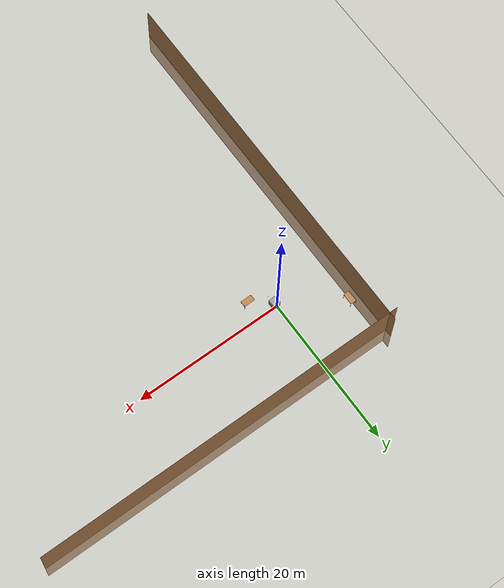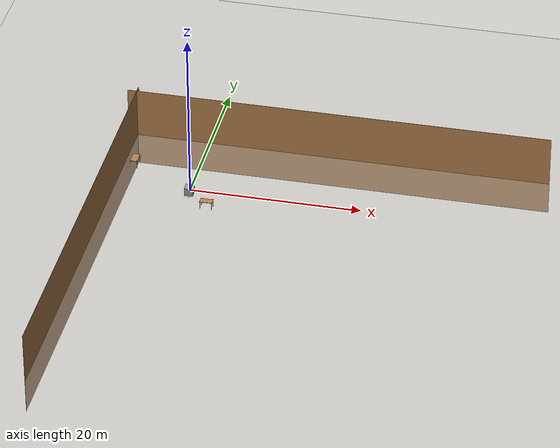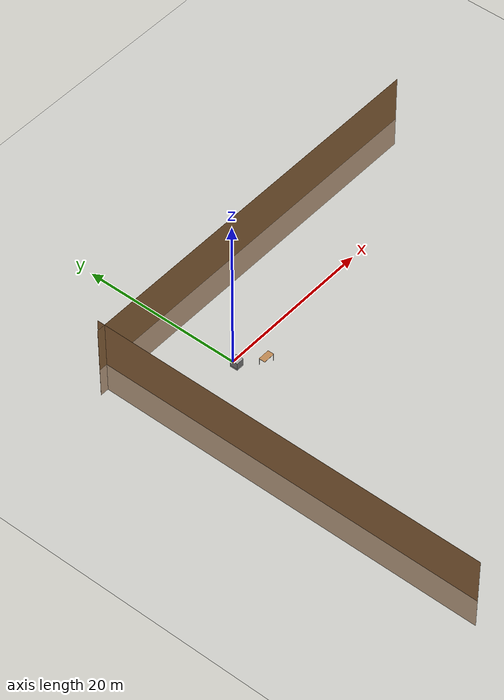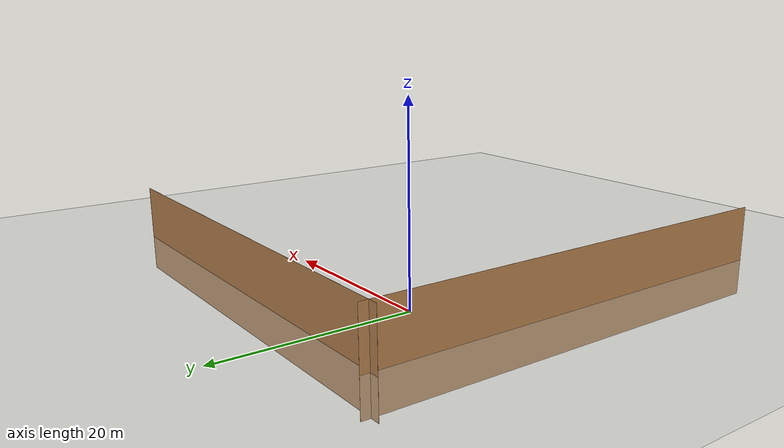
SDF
<sdf version="1.4">
 <world name="default">
  <include><uri>model://minitable</uri><pose>2.5 -2.48 0 0 0 0</pose></include>
  <include>
   <uri>model://unit_box</uri>
   <pose>0 -0.485773 0.255625 3.1415 0 -1.551854</pose>
   <static>0</static>
  </include>
  <model name="box_mini">
   <pose>0.15 -1.6 0.05 0 0 0</pose>
   <link name="link">
    <inertial><mass>0.01</mass></inertial>
    <collision name="collision"><geometry><sphere><radius>0.001</radius></sphere></geometry></collision>
    <visual name="visual"><geometry><sphere><radius>0.02</radius></sphere></geometry></visual>
   </link>
  </model>
  <include>
   <uri>model://wall_wooden</uri>
   <name>wall_wooden1</name>
   <pose>15.15 10 0 0 0 0</pose>
   <static>1</static>
  </include>
  <include>
   <uri>model://wall_wooden</uri>
   <name>wall_wooden2</name>
   <pose>-8.768 -14 0 0 0 1.57</pose>
   <static>1</static>
  </include>
  <include>
   <uri>model://minitable</uri>
   <name>minitable_2</name>
   <pose>-7.65 4.39 0 0 0 -1.57</pose>
   <static>1</static>
  </include>
  <include><uri>model://sun</uri></include>
  <include><uri>model://ground_plane</uri></include>
  <scene>
   <ambient>0.4 0.4 0.4 1.0</ambient>
   <grid>false</grid>
   <sky><clouds><speed>4</speed></clouds></sky>
   <shadows>false</shadows>
  </scene>
  <light type="directional" name="sun">
   <cast_shadows>false</cast_shadows>
   <pose>0 0 100 0 0 0</pose>
   <diffuse>0.8 0.8 0.8 1</diffuse>
   <specular>0.9 0.9 0.9 1</specular>
   <attenuation>
    <range>1000</range>
    <constant>0.9</constant>
    <linear>0.01</linear>
    <quadratic>0.001</quadratic>
   </attenuation>
   <direction>0.2 0.2 -0.9</direction>
  </light>
 </world>
</sdf>

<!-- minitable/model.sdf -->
<sdf version='1.6'>
  <model name='minitable'>
    <link name='link'>
      <pose frame=''>0 0 0 0 -0 0</pose>
      <self_collide>0</self_collide>
      <kinematic>0</kinematic>
      <gravity>1</gravity>
      <inertial>
        <mass>1</mass>
        <pose frame=''>0 0 0 0 -0 0</pose>
        <inertia>
          <ixx>1</ixx>
          <ixy>0</ixy>
          <ixz>0</ixz>
          <iyy>1</iyy>
          <iyz>0</iyz>
          <izz>1</izz>
        </inertia>
      </inertial>
      <visual name='visual1'>
        <pose frame=''>0 0 0.5 0 -0 0</pose>
        <geometry>
          <box>
            <size>1.5 0.8 0.03</size>
          </box>
        </geometry>
        <material>
          <script>
            <uri>file://media/materials/scripts/gazebo.material</uri>
            <name>Gazebo/Wood</name>
          </script>
          <shader type='pixel'>
            <normal_map>__default__</normal_map>
          </shader>
          <ambient>1 1 1 1</ambient>
          <diffuse>1 1 1 1</diffuse>
          <specular>0.2 0.2 0.2 1</specular>
          <emissive>0 0 0 1</emissive>
        </material>
        <transparency>0</transparency>
        <cast_shadows>1</cast_shadows>
      </visual>
      <visual name='front_left_leg'>
        <pose frame=''>0.68 0.38 0.05 0 -0 0</pose>
        <geometry>
          <cylinder>
            <radius>0.02</radius>
            <length>1</length>
          </cylinder>
        </geometry>
        <material>
          <script>
            <uri>file://media/materials/scripts/gazebo.material</uri>
            <name>Gazebo/Grey</name>
          </script>
          <shader type='pixel'>
            <normal_map>__default__</normal_map>
          </shader>
          <ambient>0.3 0.3 0.3 1</ambient>
          <diffuse>0.7 0.7 0.7 1</diffuse>
          <specular>0.01 0.01 0.01 1</specular>
          <emissive>0 0 0 1</emissive>
        </material>
        <transparency>0</transparency>
        <cast_shadows>1</cast_shadows>
      </visual>
      <visual name='front_right_leg'>
        <pose frame=''>0.68 -0.38 0.05 0 -0 0</pose>
        <geometry>
          <cylinder>
            <radius>0.02</radius>
            <length>1</length>
          </cylinder>
        </geometry>
        <material>
          <script>
            <uri>file://media/materials/scripts/gazebo.material</uri>
            <name>Gazebo/Grey</name>
          </script>
          <shader type='pixel'>
            <normal_map>__default__</normal_map>
          </shader>
          <ambient>0.3 0.3 0.3 1</ambient>
          <diffuse>0.7 0.7 0.7 1</diffuse>
          <specular>0.01 0.01 0.01 1</specular>
          <emissive>0 0 0 1</emissive>
        </material>
        <transparency>0</transparency>
        <cast_shadows>1</cast_shadows>
      </visual>
      <visual name='back_right_leg'>
        <pose frame=''>-0.68 -0.38 0.05 0 -0 0</pose>
        <geometry>
          <cylinder>
            <radius>0.02</radius>
            <length>1</length>
          </cylinder>
        </geometry>
        <material>
          <script>
            <uri>file://media/materials/scripts/gazebo.material</uri>
            <name>Gazebo/Grey</name>
          </script>
          <shader type='pixel'>
            <normal_map>__default__</normal_map>
          </shader>
          <ambient>0.3 0.3 0.3 1</ambient>
          <diffuse>0.7 0.7 0.7 1</diffuse>
          <specular>0.01 0.01 0.01 1</specular>
          <emissive>0 0 0 1</emissive>
        </material>
        <transparency>0</transparency>
        <cast_shadows>1</cast_shadows>
      </visual>
      <visual name='back_left_leg'>
        <pose frame=''>-0.68 0.38 0.05 0 -0 0</pose>
        <geometry>
          <cylinder>
            <radius>0.02</radius>
            <length>1</length>
          </cylinder>
        </geometry>
        <material>
          <script>
            <uri>file://media/materials/scripts/gazebo.material</uri>
            <name>Gazebo/Grey</name>
          </script>
          <shader type='pixel'>
            <normal_map>__default__</normal_map>
          </shader>
          <ambient>0.3 0.3 0.3 1</ambient>
          <diffuse>0.7 0.7 0.7 1</diffuse>
          <specular>0.01 0.01 0.01 1</specular>
          <emissive>0 0 0 1</emissive>
        </material>
        <transparency>0</transparency>
        <cast_shadows>1</cast_shadows>
      </visual>
      <collision name='surface'>
        <laser_retro>0</laser_retro>
        <max_contacts>10</max_contacts>
        <pose frame=''>0 0 0.5 0 -0 0</pose>
        <geometry>
          <box>
            <size>1.5 0.8 0.03</size>
          </box>
        </geometry>
        <surface>
          <friction>
            <ode>
              <mu>0.6</mu>
              <mu2>0.6</mu2>
              <fdir1>0 0 0</fdir1>
              <slip1>0</slip1>
              <slip2>0</slip2>
            </ode>
            <torsional>
              <coefficient>1</coefficient>
              <patch_radius>0</patch_radius>
              <surface_radius>0</surface_radius>
              <use_patch_radius>1</use_patch_radius>
              <ode>
                <slip>0</slip>
              </ode>
            </torsional>
          </friction>
          <bounce>
            <restitution_coefficient>0</restitution_coefficient>
            <threshold>1e+06</threshold>
          </bounce>
          <contact>
            <collide_without_contact>0</collide_without_contact>
            <collide_without_contact_bitmask>1</collide_without_contact_bitmask>
            <collide_bitmask>1</collide_bitmask>
            <ode>
              <soft_cfm>0</soft_cfm>
              <soft_erp>0.2</soft_erp>
              <kp>1e+13</kp>
              <kd>1</kd>
              <max_vel>0.01</max_vel>
              <min_depth>0</min_depth>
            </ode>
            <bullet>
              <split_impulse>1</split_impulse>
              <split_impulse_penetration_threshold>-0.01</split_impulse_penetration_threshold>
              <soft_cfm>0</soft_cfm>
              <soft_erp>0.2</soft_erp>
              <kp>1e+13</kp>
              <kd>1</kd>
            </bullet>
          </contact>
        </surface>
      </collision>
      <collision name='front_left_leg'>
        <laser_retro>0</laser_retro>
        <max_contacts>10</max_contacts>
        <pose frame=''>0.68 0.38 0.05 0 -0 0</pose>
        <geometry>
          <cylinder>
            <radius>0.02</radius>
            <length>1</length>
          </cylinder>
        </geometry>
        <surface>
          <friction>
            <ode>
              <mu>1</mu>
              <mu2>1</mu2>
              <fdir1>0 0 0</fdir1>
              <slip1>0</slip1>
              <slip2>0</slip2>
            </ode>
            <torsional>
              <coefficient>1</coefficient>
              <patch_radius>0</patch_radius>
              <surface_radius>0</surface_radius>
              <use_patch_radius>1</use_patch_radius>
              <ode>
                <slip>0</slip>
              </ode>
            </torsional>
          </friction>
          <bounce>
            <restitution_coefficient>0</restitution_coefficient>
            <threshold>1e+06</threshold>
          </bounce>
          <contact>
            <collide_without_contact>0</collide_without_contact>
            <collide_without_contact_bitmask>1</collide_without_contact_bitmask>
            <collide_bitmask>1</collide_bitmask>
            <ode>
              <soft_cfm>0</soft_cfm>
              <soft_erp>0.2</soft_erp>
              <kp>1e+13</kp>
              <kd>1</kd>
              <max_vel>0.01</max_vel>
              <min_depth>0</min_depth>
            </ode>
            <bullet>
              <split_impulse>1</split_impulse>
              <split_impulse_penetration_threshold>-0.01</split_impulse_penetration_threshold>
              <soft_cfm>0</soft_cfm>
              <soft_erp>0.2</soft_erp>
              <kp>1e+13</kp>
              <kd>1</kd>
            </bullet>
          </contact>
        </surface>
      </collision>
      <collision name='front_right_leg'>
        <laser_retro>0</laser_retro>
        <max_contacts>10</max_contacts>
        <pose frame=''>0.68 -0.38 0.05 0 -0 0</pose>
        <geometry>
          <cylinder>
            <radius>0.02</radius>
            <length>1</length>
          </cylinder>
        </geometry>
        <surface>
          <friction>
            <ode>
              <mu>1</mu>
              <mu2>1</mu2>
              <fdir1>0 0 0</fdir1>
              <slip1>0</slip1>
              <slip2>0</slip2>
            </ode>
            <torsional>
              <coefficient>1</coefficient>
              <patch_radius>0</patch_radius>
              <surface_radius>0</surface_radius>
              <use_patch_radius>1</use_patch_radius>
              <ode>
                <slip>0</slip>
              </ode>
            </torsional>
          </friction>
          <bounce>
            <restitution_coefficient>0</restitution_coefficient>
            <threshold>1e+06</threshold>
          </bounce>
          <contact>
            <collide_without_contact>0</collide_without_contact>
            <collide_without_contact_bitmask>1</collide_without_contact_bitmask>
            <collide_bitmask>1</collide_bitmask>
            <ode>
              <soft_cfm>0</soft_cfm>
              <soft_erp>0.2</soft_erp>
              <kp>1e+13</kp>
              <kd>1</kd>
              <max_vel>0.01</max_vel>
              <min_depth>0</min_depth>
            </ode>
            <bullet>
              <split_impulse>1</split_impulse>
              <split_impulse_penetration_threshold>-0.01</split_impulse_penetration_threshold>
              <soft_cfm>0</soft_cfm>
              <soft_erp>0.2</soft_erp>
              <kp>1e+13</kp>
              <kd>1</kd>
            </bullet>
          </contact>
        </surface>
      </collision>
      <collision name='back_right_leg'>
        <laser_retro>0</laser_retro>
        <max_contacts>10</max_contacts>
        <pose frame=''>-0.68 -0.38 0.05 0 -0 0</pose>
        <geometry>
          <cylinder>
            <radius>0.02</radius>
            <length>1</length>
          </cylinder>
        </geometry>
        <surface>
          <friction>
            <ode>
              <mu>1</mu>
              <mu2>1</mu2>
              <fdir1>0 0 0</fdir1>
              <slip1>0</slip1>
              <slip2>0</slip2>
            </ode>
            <torsional>
              <coefficient>1</coefficient>
              <patch_radius>0</patch_radius>
              <surface_radius>0</surface_radius>
              <use_patch_radius>1</use_patch_radius>
              <ode>
                <slip>0</slip>
              </ode>
            </torsional>
          </friction>
          <bounce>
            <restitution_coefficient>0</restitution_coefficient>
            <threshold>1e+06</threshold>
          </bounce>
          <contact>
            <collide_without_contact>0</collide_without_contact>
            <collide_without_contact_bitmask>1</collide_without_contact_bitmask>
            <collide_bitmask>1</collide_bitmask>
            <ode>
              <soft_cfm>0</soft_cfm>
              <soft_erp>0.2</soft_erp>
              <kp>1e+13</kp>
              <kd>1</kd>
              <max_vel>0.01</max_vel>
              <min_depth>0</min_depth>
            </ode>
            <bullet>
              <split_impulse>1</split_impulse>
              <split_impulse_penetration_threshold>-0.01</split_impulse_penetration_threshold>
              <soft_cfm>0</soft_cfm>
              <soft_erp>0.2</soft_erp>
              <kp>1e+13</kp>
              <kd>1</kd>
            </bullet>
          </contact>
        </surface>
      </collision>
      <collision name='back_left_leg'>
        <laser_retro>0</laser_retro>
        <max_contacts>10</max_contacts>
        <pose frame=''>-0.68 0.38 0.05 0 -0 0</pose>
        <geometry>
          <cylinder>
            <radius>0.02</radius>
            <length>1</length>
          </cylinder>
        </geometry>
        <surface>
          <friction>
            <ode>
              <mu>1</mu>
              <mu2>1</mu2>
              <fdir1>0 0 0</fdir1>
              <slip1>0</slip1>
              <slip2>0</slip2>
            </ode>
            <torsional>
              <coefficient>1</coefficient>
              <patch_radius>0</patch_radius>
              <surface_radius>0</surface_radius>
              <use_patch_radius>1</use_patch_radius>
              <ode>
                <slip>0</slip>
              </ode>
            </torsional>
          </friction>
          <bounce>
            <restitution_coefficient>0</restitution_coefficient>
            <threshold>1e+06</threshold>
          </bounce>
          <contact>
            <collide_without_contact>0</collide_without_contact>
            <collide_without_contact_bitmask>1</collide_without_contact_bitmask>
            <collide_bitmask>1</collide_bitmask>
            <ode>
              <soft_cfm>0</soft_cfm>
              <soft_erp>0.2</soft_erp>
              <kp>1e+13</kp>
              <kd>1</kd>
              <max_vel>0.01</max_vel>
              <min_depth>0</min_depth>
            </ode>
            <bullet>
              <split_impulse>1</split_impulse>
              <split_impulse_penetration_threshold>-0.01</split_impulse_penetration_threshold>
              <soft_cfm>0</soft_cfm>
              <soft_erp>0.2</soft_erp>
              <kp>1e+13</kp>
              <kd>1</kd>
            </bullet>
          </contact>
        </surface>
      </collision>
    </link>
    <static>1</static>
    <allow_auto_disable>1</allow_auto_disable>
  </model>
</sdf>

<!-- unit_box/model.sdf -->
<sdf version='1.7'>
  <model name='unit_box'>
    <link name='link'>
      <inertial>
        <mass>1</mass>
        <inertia>
          <ixx>0.166667</ixx>
          <ixy>0</ixy>
          <ixz>0</ixz>
          <iyy>0.166667</iyy>
          <iyz>0</iyz>
          <izz>0.166667</izz>
        </inertia>
        <pose>0 0 0 0 -0 0</pose>
      </inertial>
      <self_collide>0</self_collide>
      <enable_wind>0</enable_wind>
      <pose>0 0 0 0 -0 0</pose>
      <gravity>1</gravity>
      <kinematic>0</kinematic>
      <visual name='visual'>
        <geometry>
          <box>
            <size>1 1 1</size>
          </box>
        </geometry>
        <material>
          <script>
            <name>Gazebo/Grey</name>
            <uri>file://media/materials/scripts/gazebo.material</uri>
          </script>
          <shader type='pixel'>
            <normal_map>__default__</normal_map>
          </shader>
          <ambient>0.8 0.8 0.8 1</ambient>
          <diffuse>0.7 0.7 0.7 1</diffuse>
          <specular>0.01 0.01 0.01 1</specular>
          <emissive>0 0 0 1</emissive>
        </material>
        <pose>0 0 0 0 -0 0</pose>
        <transparency>0</transparency>
        <cast_shadows>1</cast_shadows>
      </visual>
      <collision name='collision'>
        <laser_retro>0</laser_retro>
        <max_contacts>10</max_contacts>
        <pose>0 0 0 0 -0 0</pose>
        <geometry>
          <box>
            <size>1 1 1</size>
          </box>
        </geometry>
        <surface>
          <friction>
            <ode>
              <mu>1</mu>
              <mu2>1</mu2>
              <fdir1>0 0 0</fdir1>
              <slip1>0</slip1>
              <slip2>0</slip2>
            </ode>
            <torsional>
              <coefficient>1</coefficient>
              <patch_radius>0</patch_radius>
              <surface_radius>0</surface_radius>
              <use_patch_radius>1</use_patch_radius>
              <ode>
                <slip>0</slip>
              </ode>
            </torsional>
          </friction>
          <bounce>
            <restitution_coefficient>0</restitution_coefficient>
            <threshold>1e+06</threshold>
          </bounce>
          <contact>
            <collide_without_contact>0</collide_without_contact>
            <collide_without_contact_bitmask>1</collide_without_contact_bitmask>
            <collide_bitmask>1</collide_bitmask>
            <ode>
              <soft_cfm>0</soft_cfm>
              <soft_erp>0.2</soft_erp>
              <kp>1e+13</kp>
              <kd>1</kd>
              <max_vel>0.01</max_vel>
              <min_depth>0</min_depth>
            </ode>
            <bullet>
              <split_impulse>1</split_impulse>
              <split_impulse_penetration_threshold>-0.01</split_impulse_penetration_threshold>
              <soft_cfm>0</soft_cfm>
              <soft_erp>0.2</soft_erp>
              <kp>1e+13</kp>
              <kd>1</kd>
            </bullet>
          </contact>
        </surface>
      </collision>
    </link>
    <static>0</static>
    <allow_auto_disable>1</allow_auto_disable>
  </model>
</sdf>

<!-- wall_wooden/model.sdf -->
<sdf version='1.6'>
  <model name='wall_wooden'>
    <link name='link'>
      <pose frame=''>0 0 0 0 -0 0</pose>
      <self_collide>0</self_collide>
      <kinematic>0</kinematic>
      <gravity>1</gravity>
      <inertial>
        <mass>1</mass>
        <pose frame=''>0 0 0 0 -0 0</pose>
        <inertia>
          <ixx>1</ixx>
          <ixy>0</ixy>
          <ixz>0</ixz>
          <iyy>1</iyy>
          <iyz>0</iyz>
          <izz>1</izz>
        </inertia>
      </inertial>
      <visual name='visual1'>
        <pose frame=''>0 0 1 1.57 -0 0</pose>
        <geometry>
          <box>
            <size>50 10.01 0.01</size>
          </box>
        </geometry>
        <material>
          <script>
            <uri>file://media/materials/scripts/gazebo.material</uri>
            <name>Gazebo/Wood</name>
          </script>
          <shader type='pixel'>
            <normal_map>__default__</normal_map>
          </shader>
          <ambient>1 1 1 1</ambient>
          <diffuse>1 1 1 1</diffuse>
          <specular>0.2 0.2 0.2 1</specular>
          <emissive>0 0 0 1</emissive>
        </material>
        <transparency>0</transparency>
        <cast_shadows>1</cast_shadows>
      </visual>
      <collision name='surface'>
        <laser_retro>0</laser_retro>
        <max_contacts>10</max_contacts>
        <pose frame=''>0 0 1 1.57 -0 0</pose>
        <geometry>
          <box>
            <size>50 10.01 0.01</size>
          </box>
        </geometry>
        <surface>
          <friction>
            <ode>
              <mu>0.6</mu>
              <mu2>0.6</mu2>
              <fdir1>0 0 0</fdir1>
              <slip1>0</slip1>
              <slip2>0</slip2>
            </ode>
            <torsional>
              <coefficient>1</coefficient>
              <patch_radius>0</patch_radius>
              <surface_radius>0</surface_radius>
              <use_patch_radius>1</use_patch_radius>
              <ode>
                <slip>0</slip>
              </ode>
            </torsional>
          </friction>
          <bounce>
            <restitution_coefficient>0</restitution_coefficient>
            <threshold>1e+06</threshold>
          </bounce>
          <contact>
            <collide_without_contact>0</collide_without_contact>
            <collide_without_contact_bitmask>1</collide_without_contact_bitmask>
            <collide_bitmask>1</collide_bitmask>
            <ode>
              <soft_cfm>0</soft_cfm>
              <soft_erp>0.2</soft_erp>
              <kp>1e+13</kp>
              <kd>1</kd>
              <max_vel>0.01</max_vel>
              <min_depth>0</min_depth>
            </ode>
            <bullet>
              <split_impulse>1</split_impulse>
              <split_impulse_penetration_threshold>-0.01</split_impulse_penetration_threshold>
              <soft_cfm>0</soft_cfm>
              <soft_erp>0.2</soft_erp>
              <kp>1e+13</kp>
              <kd>1</kd>
            </bullet>
          </contact>
        </surface>
      </collision>
    </link>
    <static>1</static>
    <allow_auto_disable>1</allow_auto_disable>
  </model>
</sdf>
